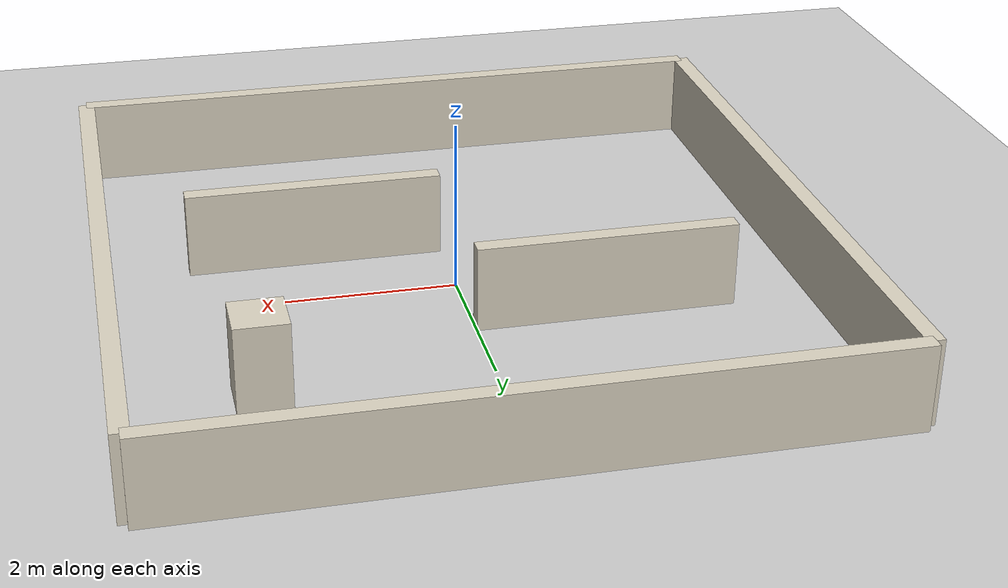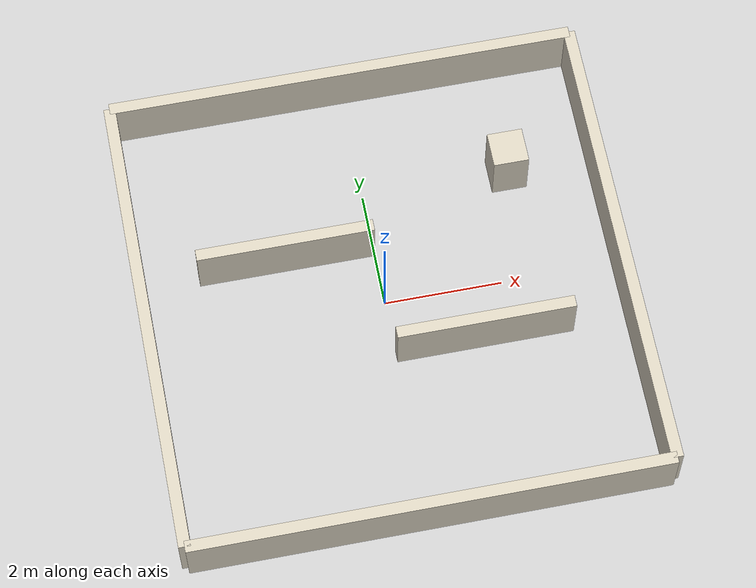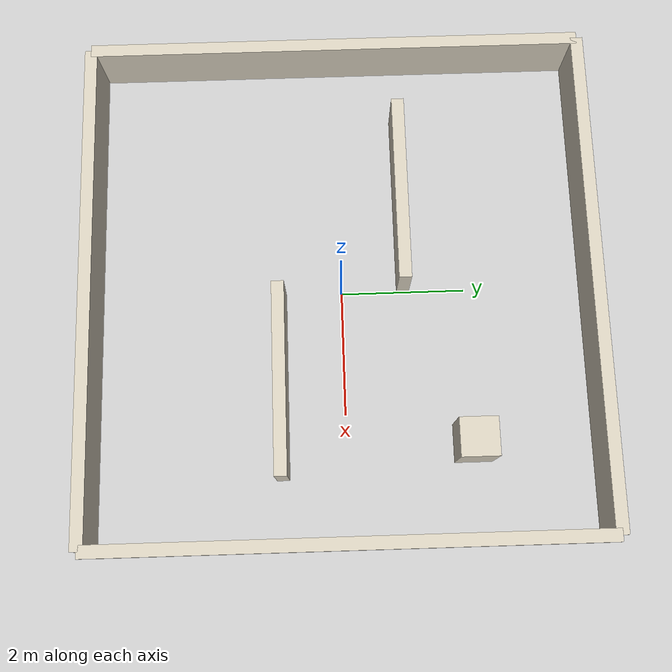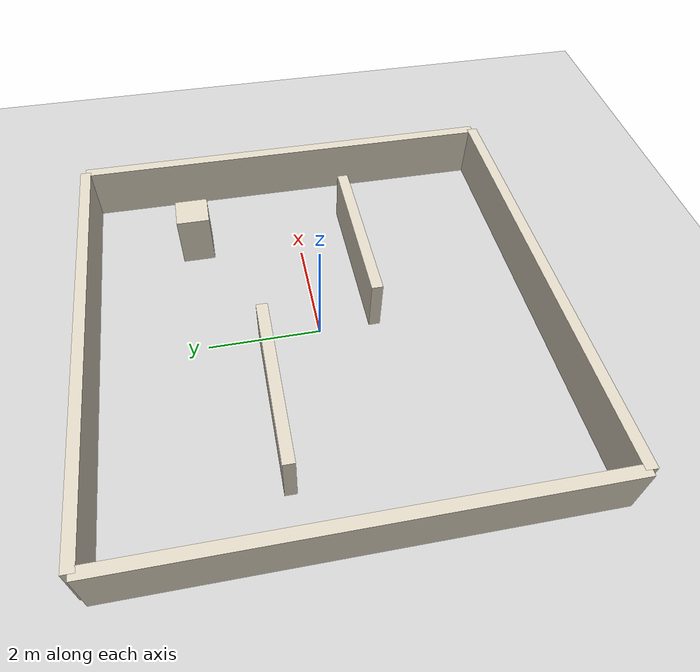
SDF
<?xml version="1.0" ?>
<sdf version="1.10">
  <world name="slam_world">

    <physics name="1ms" type="ignored">
      <max_step_size>0.001</max_step_size>
      <real_time_factor>1.0</real_time_factor>
    </physics>

    <plugin filename="gz-sim-physics-system" name="gz::sim::systems::Physics"/>
    <plugin filename="gz-sim-user-commands-system" name="gz::sim::systems::UserCommands"/>
    <plugin filename="gz-sim-scene-broadcaster-system" name="gz::sim::systems::SceneBroadcaster"/>

    <plugin filename="gz-sim-sensors-system" name="gz::sim::systems::Sensors">
      <render_engine>ogre2</render_engine>
    </plugin>

    <plugin filename="gz-sim-imu-system" name="gz::sim::systems::Imu"/>

    <light type="directional" name="sun">
      <pose>0 0 10 0 0 0</pose>
      <diffuse>0.8 0.8 0.8 1</diffuse>
      <specular>0.2 0.2 0.2 1</specular>
      <direction>-0.5 0.1 -0.9</direction>
    </light>

    <model name="ground_plane">
      <static>true</static>
      <link name="link">
        <collision name="collision">
          <geometry>
            <plane>
              <normal>0 0 1</normal>
              <size>20 20</size>
            </plane>
          </geometry>
        </collision>
        <visual name="visual">
          <geometry>
            <plane>
              <normal>0 0 1</normal>
              <size>20 20</size>
            </plane>
          </geometry>
        </visual>
      </link>
    </model>

    <!-- Outer walls -->
    <model name="wall_north">
      <static>true</static>
      <pose>0 4 0.5 0 0 0</pose>
      <link name="link">
        <collision name="collision"><geometry><box><size>8 0.2 1</size></box></geometry></collision>
        <visual name="visual"><geometry><box><size>8 0.2 1</size></box></geometry>
          <material>
            <ambient>0.85 0.82 0.75 1</ambient>
            <diffuse>0.85 0.82 0.75 1</diffuse>
            <specular>0.2 0.2 0.2 1</specular>
          </material>
        </visual>
      </link>
    </model>

    <model name="wall_south">
      <static>true</static>
      <pose>0 -4 0.5 0 0 0</pose>
      <link name="link">
        <collision name="collision"><geometry><box><size>8 0.2 1</size></box></geometry></collision>
        <visual name="visual"><geometry><box><size>8 0.2 1</size></box></geometry>
          <material>
            <ambient>0.85 0.82 0.75 1</ambient>
            <diffuse>0.85 0.82 0.75 1</diffuse>
            <specular>0.2 0.2 0.2 1</specular>
          </material>
        </visual>
      </link>
    </model>

    <model name="wall_west">
      <static>true</static>
      <pose>-4 0 0.5 0 0 0</pose>
      <link name="link">
        <collision name="collision"><geometry><box><size>0.2 8 1</size></box></geometry></collision>
        <visual name="visual"><geometry><box><size>0.2 8 1</size></box></geometry>
          <material>
            <ambient>0.85 0.82 0.75 1</ambient>
            <diffuse>0.85 0.82 0.75 1</diffuse>
            <specular>0.2 0.2 0.2 1</specular>
          </material>
        </visual>
      </link>
    </model>

    <model name="wall_east">
      <static>true</static>
      <pose>4 0 0.5 0 0 0</pose>
      <link name="link">
        <collision name="collision"><geometry><box><size>0.2 8 1</size></box></geometry></collision>
        <visual name="visual"><geometry><box><size>0.2 8 1</size></box></geometry>
          <material>
            <ambient>0.85 0.82 0.75 1</ambient>
            <diffuse>0.85 0.82 0.75 1</diffuse>
            <specular>0.2 0.2 0.2 1</specular>
          </material>
        </visual>
      </link>
    </model>

    <!-- Internal asymmetric obstacles -->
    <model name="inner_wall_1">
      <static>true</static>
      <pose>-1.5 1.0 0.5 0 0 0</pose>
      <link name="link">
        <collision name="collision"><geometry><box><size>3.0 0.2 1</size></box></geometry></collision>
        <visual name="visual"><geometry><box><size>3.0 0.2 1</size></box></geometry>
          <material>
            <ambient>0.85 0.82 0.75 1</ambient>
            <diffuse>0.85 0.82 0.75 1</diffuse>
            <specular>0.2 0.2 0.2 1</specular>
          </material>
        </visual>
      </link>
    </model>

    <model name="inner_wall_2">
      <static>true</static>
      <pose>1.5 -1.0 0.5 0 0 0</pose>
      <link name="link">
        <collision name="collision"><geometry><box><size>3.0 0.2 1</size></box></geometry></collision>
        <visual name="visual"><geometry><box><size>3.0 0.2 1</size></box></geometry>
          <material>
            <ambient>0.85 0.82 0.75 1</ambient>
            <diffuse>0.85 0.82 0.75 1</diffuse>
            <specular>0.2 0.2 0.2 1</specular>
          </material>
        </visual>
      </link>
    </model>

    <model name="pillar">
      <static>true</static>
      <pose>2.5 2.0 0.5 0 0 0</pose>
      <link name="link">
        <collision name="collision"><geometry><box><size>0.6 0.6 1</size></box></geometry></collision>
        <visual name="visual"><geometry><box><size>0.6 0.6 1</size></box></geometry>
          <material>
            <ambient>0.85 0.82 0.75 1</ambient>
            <diffuse>0.85 0.82 0.75 1</diffuse>
            <specular>0.2 0.2 0.2 1</specular>
          </material>
        </visual>
      </link>
    </model>

  </world>
</sdf>
